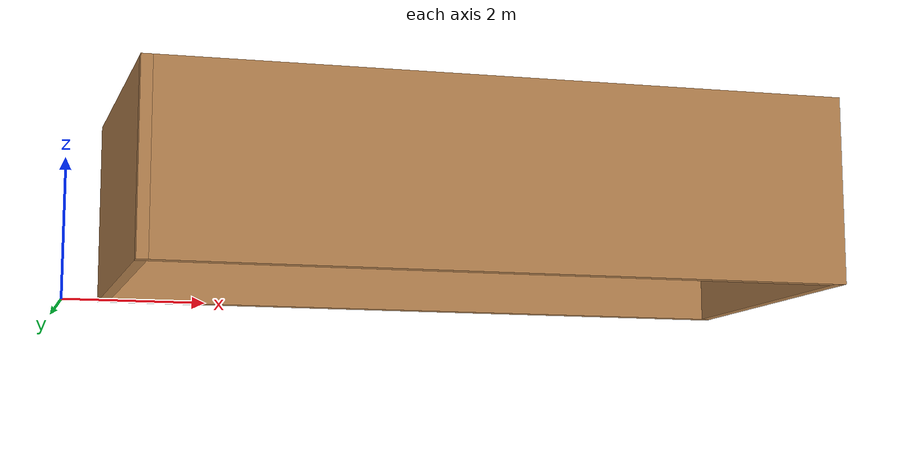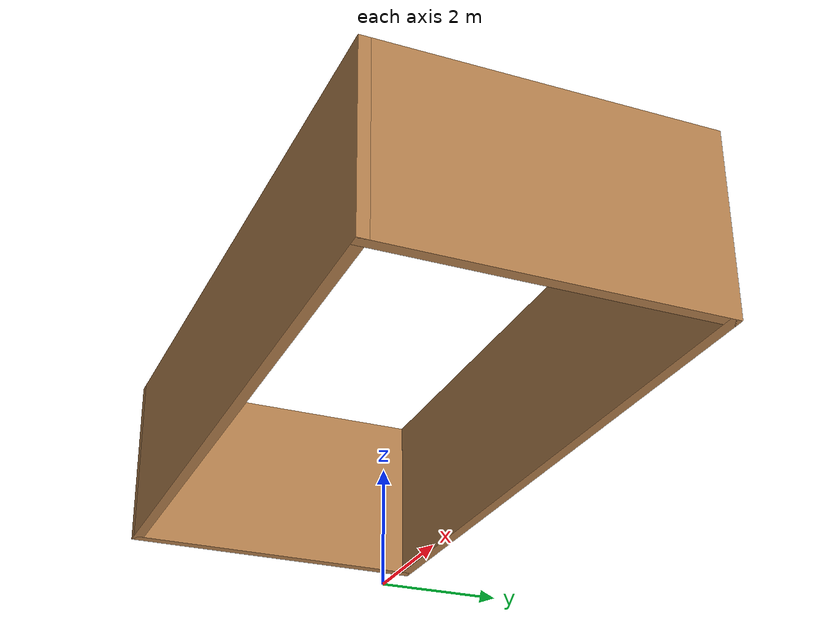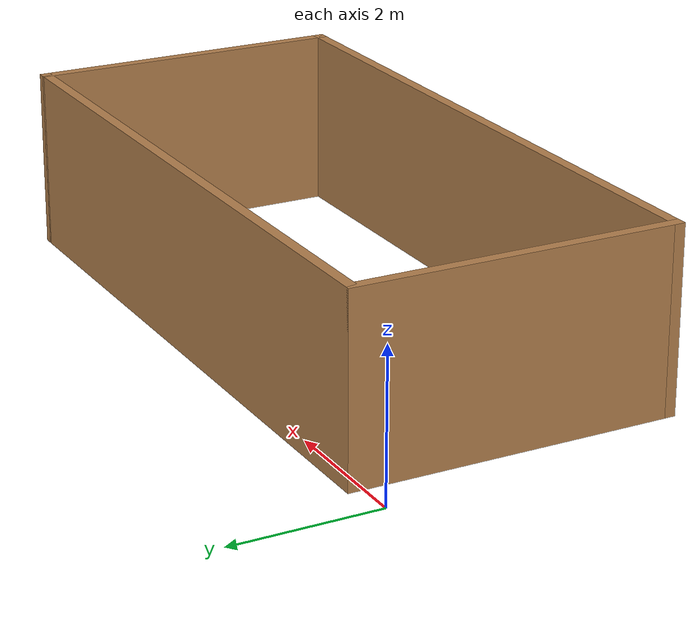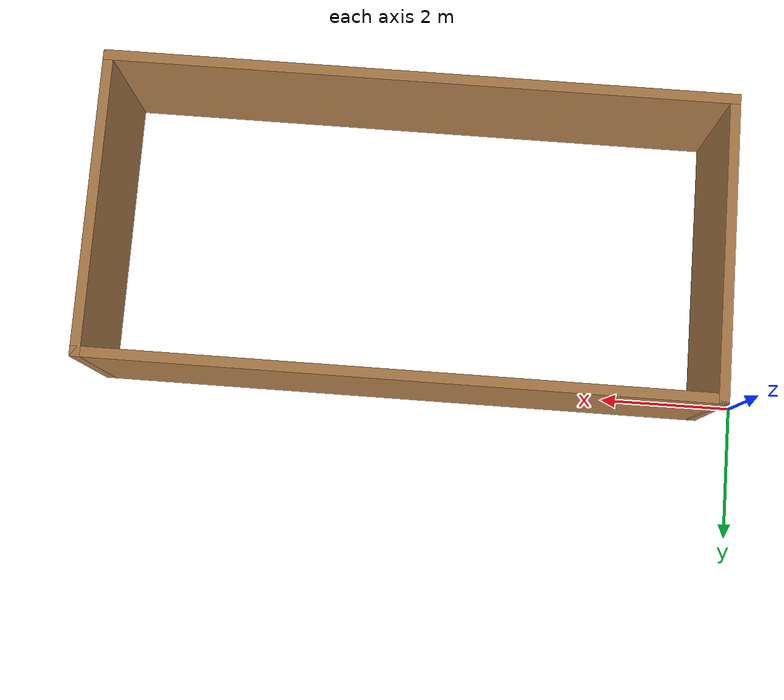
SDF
<?xml version='1.0'?>
<sdf version='1.7'>
  <model name='rectangular_wall'>
    <pose>4.88273 -2.04068 0 0 -0 0</pose>
    <link name='Wall_25'>
      <collision name='Wall_25_Collision'>
        <geometry>
          <box>
            <size>9.25 0.15 2.5</size>
          </box>
        </geometry>
        <pose>0 0 1.25 0 -0 0</pose>
      </collision>
      <visual name='Wall_25_Visual'>
        <pose>0 0 1.25 0 -0 0</pose>
        <geometry>
          <box>
            <size>9.25 0.15 2.5</size>
          </box>
        </geometry>
        <material>
          <script>
            <uri>file://media/materials/scripts/gazebo.material</uri>
            <name>Gazebo/Wood</name>
          </script>
          <ambient>1 1 1 1</ambient>
        </material>
        <meta>
          <layer>0</layer>
        </meta>
      </visual>
      <pose>0.25773 2.175 0 0 -0 0</pose>
    </link>
    <link name='Wall_26'>
      <collision name='Wall_26_Collision'>
        <geometry>
          <box>
            <size>4.5 0.15 2.5</size>
          </box>
        </geometry>
        <pose>0 0 1.25 0 -0 0</pose>
      </collision>
      <visual name='Wall_26_Visual'>
        <pose>0 0 1.25 0 -0 0</pose>
        <geometry>
          <box>
            <size>4.5 0.15 2.5</size>
          </box>
        </geometry>
        <material>
          <script>
            <uri>file://media/materials/scripts/gazebo.material</uri>
            <name>Gazebo/Wood</name>
          </script>
          <ambient>1 1 1 1</ambient>
        </material>
        <meta>
          <layer>0</layer>
        </meta>
      </visual>
      <pose>4.80773 0 0 0 -0 -1.5708</pose>
    </link>
    <link name='Wall_27'>
      <collision name='Wall_27_Collision'>
        <geometry>
          <box>
            <size>9.25 0.15 2.5</size>
          </box>
        </geometry>
        <pose>0 0 1.25 0 -0 0</pose>
      </collision>
      <visual name='Wall_27_Visual'>
        <pose>0 0 1.25 0 -0 0</pose>
        <geometry>
          <box>
            <size>9.25 0.15 2.5</size>
          </box>
        </geometry>
        <material>
          <script>
            <uri>file://media/materials/scripts/gazebo.material</uri>
            <name>Gazebo/Wood</name>
          </script>
          <ambient>1 1 1 1</ambient>
        </material>
        <meta>
          <layer>0</layer>
        </meta>
      </visual>
      <pose>0.25773 -2.175 0 0 -0 3.14159</pose>
    </link>
    <link name='Wall_28'>
      <collision name='Wall_28_Collision'>
        <geometry>
          <box>
            <size>4.5 0.15 2.5</size>
          </box>
        </geometry>
        <pose>0 0 1.25 0 -0 0</pose>
      </collision>
      <visual name='Wall_28_Visual'>
        <pose>0 0 1.25 0 -0 0</pose>
        <geometry>
          <box>
            <size>4.5 0.15 2.5</size>
          </box>
        </geometry>
        <material>
          <script>
            <uri>file://media/materials/scripts/gazebo.material</uri>
            <name>Gazebo/Wood</name>
          </script>
          <ambient>1 1 1 1</ambient>
        </material>
        <meta>
          <layer>0</layer>
        </meta>
      </visual>
      <pose>-4.29227 0 0 0 -0 1.5708</pose>
    </link>
    <link name='Wall_29'>
      <collision name='Wall_29_Collision'>
        <geometry>
          <box>
            <size>0.15 0.15 2.5</size>
          </box>
        </geometry>
        <pose>0 0 1.25 0 -0 0</pose>
      </collision>
      <visual name='Wall_29_Visual'>
        <pose>0 0 1.25 0 -0 0</pose>
        <geometry>
          <box>
            <size>0.15 0.15 2.5</size>
          </box>
        </geometry>
        <material>
          <script>
            <uri>file://media/materials/scripts/gazebo.material</uri>
            <name>Gazebo/Grey</name>
          </script>
          <ambient>1 1 1 1</ambient>
        </material>
        <meta>
          <layer>0</layer>
        </meta>
      </visual>
      <pose>-4.29227 2.175 0 0 -0 0</pose>
    </link>
    <static>1</static>
  </model>
</sdf>
